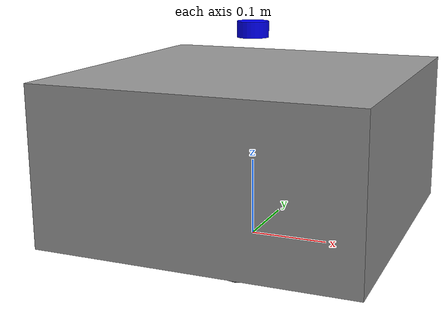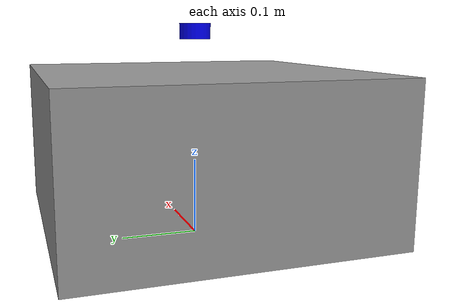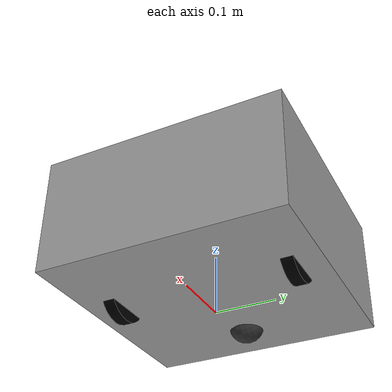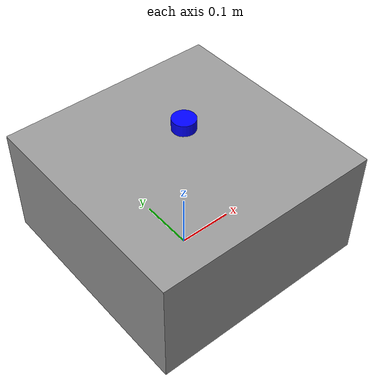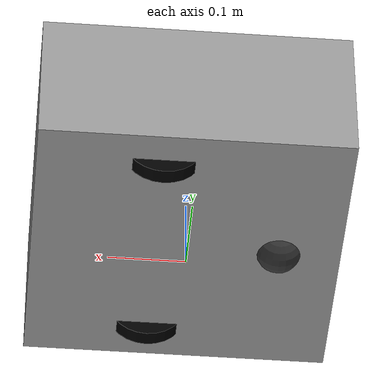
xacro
<?xml version="1.0"?>
<robot name="my_robot" xmlns:xacro="http://ros.org/wiki/xacro">

  <!-- Materials -->
  <material name="gray">
    <color rgba="0.5 0.5 0.5 1"/>
  </material>
  <material name="black">
    <color rgba="0 0 0 1"/>
  </material>
  <material name="blue">
    <color rgba="0 0 1 1"/>
  </material>

 <!--  root link (In planar environments, its more stable for navigation to declare base_footprint first rather than using base_link as the root link) -->
  <link name="base_footprint">
    <origin xyz="0 0 0" rpy="0 0 0" />
  </link>

  <!-- base_link -->
  <link name="base_link">
    <visual>
      <geometry><box size="0.4 0.4 0.2"/></geometry>
    </visual>
    <collision>
      <geometry><box size="0.4 0.4 0.2"/></geometry>
    </collision>
    <inertial>
      <origin xyz="0 0 0.12" rpy="0 0 0"/>
      <mass value="5.0"/>
      <inertia ixx="0.1" iyy="0.1" izz="0.1" ixy="0" ixz="0" iyz="0"/>
    </inertial>
  </link>

  <gazebo reference="base_link">
    <material>Gazebo/Gray</material>
  </gazebo>

  <!-- base_footprint base_link fixed tf- map -> odom -> base_footprint -> base_link -> sensor -->
  <joint name="base_footprint_joint" type="fixed">
    <origin xyz="0 0 0.12" rpy="0 0 0"/>
    <parent link="base_footprint"/>
    <child link="base_link"/>
  </joint>

  <!-- Wheel Macro -->
  <xacro:macro name="wheel" params="name y_pos">
    <link name="${name}">
      <visual>
        <origin rpy="1.5708 1.5708 0"/>
        <geometry><cylinder radius="0.05" length="0.02"/></geometry>
        <material name="black"/>
      </visual>
      <collision>
        <origin rpy="1.5708 1.5708 0"/>
        <geometry><cylinder radius="0.05" length="0.02"/></geometry>
      </collision>
      <inertial>
        <mass value="0.2"/>
        <inertia ixx="0.001" iyy="0.001" izz="0.001" ixy="0" ixz="0" iyz="0"/>
      </inertial>
    </link>

    <joint name="${name}_joint" type="continuous">
      <parent link="base_link"/>
      <child link="${name}"/>
      <origin xyz="0.04 ${y_pos} -0.07"/>
      <axis xyz="0 1 0"/>
    </joint>

    <transmission name="${name}_trans">
      <type>transmission_interface/SimpleTransmission</type>
      <joint name="${name}_joint">
        <hardwareInterface>hardware_interface/EffortJointInterface</hardwareInterface>
      </joint>
      <actuator name="${name}_motor">
        <hardwareInterface>hardware_interface/EffortJointInterface</hardwareInterface>
        <mechanicalReduction>1</mechanicalReduction>
      </actuator>
    </transmission>
  </xacro:macro>

  <gazebo reference="left_wheel">
    <material>Gazebo/Black</material>
  </gazebo>
  <gazebo reference="right_wheel">
    <material>Gazebo/Black</material>
  </gazebo>

  <!-- Back driving wheels -->
  <xacro:wheel name="left_wheel" y_pos="0.15"/>
  <xacro:wheel name="right_wheel" y_pos="-0.15"/>

  <!-- Front caster wheel -->
  <xacro:macro name="caster_wheel" params="name x_pos y_pos">
    <link name="${name}">
      <visual>
        <origin rpy="1.5708 1.5708 0"/>
        <geometry><sphere radius="0.03"/></geometry>
        <material name="black"><color rgba="0.2 0.2 0.2 1"/></material>
      </visual>
      <collision>
        <origin rpy="1.5708 1.5708 0"/>
        <geometry><sphere radius="0.03"/></geometry>
      </collision>
      <inertial>
        <mass value="0.05"/>
        <inertia ixx="0.00001" iyy="0.00001" izz="0.00001" ixy="0" ixz="0" iyz="0"/>
      </inertial>
    </link>

    <joint name="${name}_joint" type="continuous">
      <parent link="base_link"/>
      <child link="${name}"/>
      <origin xyz="${x_pos} ${y_pos} -0.09"/>
      <axis xyz="0 1 1"/>
    </joint>

    <gazebo reference="${name}">
      <kp>1000000.0</kp>
      <kd>100.0</kd>
      <mu1>0.01</mu1>
      <mu2>0.01</mu2>
      <fdir1>0 0 1</fdir1>
      <maxVel>0.1</maxVel>
      <minDepth>0.001</minDepth>
      <selfCollide>false</selfCollide>
    </gazebo>

    <gazebo reference="back_caster">
      <material>Gazebo/Black</material>
    </gazebo>
  </xacro:macro>

  <xacro:caster_wheel name="back_caster" x_pos="-0.12" y_pos="0"/>

  <!-- Lidar -->
  <link name="laser_link">
    <visual>
      <geometry><cylinder radius="0.02" length="0.02"/></geometry>
      <material name="blue"/>
    </visual>
    <collision>
      <geometry><cylinder radius="0.02" length="0.02"/></geometry>
    </collision>
    <inertial>
      <mass value="0.1"/>
      <inertia ixx="0.001" iyy="0.001" izz="0.001" ixy="0" ixz="0" iyz="0"/>
    </inertial>
  </link>

  <gazebo reference="laser_link">
    <material>Gazebo/Blue</material>
  </gazebo>

  <gazebo reference="laser_link">
    <sensor type="ray" name="laser">
      <update_rate>25.0</update_rate>
      <ray>
        <scan>
          <horizontal>
            <samples>360</samples>
            <min_angle>-1.57</min_angle>
            <max_angle>1.57</max_angle>
          </horizontal>
        </scan>
        <range><min>0.20</min><max>10.0</max></range>
      </ray>
      <plugin name="gazebo_ros_laser" filename="libgazebo_ros_laser.so">
        <topicName>scan</topicName>
        <frameName>laser_link</frameName>
      </plugin>
    </sensor>
  </gazebo>

  <joint name="laser_joint" type="fixed">
   <parent link="base_link"/>
   <child link="laser_link"/>
   <origin xyz="0 0 0.15"/>
  </joint>

  <gazebo>
    <plugin name="gazebo_ros_control" filename="libgazebo_ros_control.so">
      <robotNamespace>/my_robot</robotNamespace>
    </plugin>
  </gazebo>

  <gazebo>
    <plugin name="diff_drive_controller" filename="libgazebo_ros_diff_drive.so">
      <leftJoint>left_wheel_joint</leftJoint>
      <rightJoint>right_wheel_joint</rightJoint>
      <wheelSeparation>0.3</wheelSeparation>
      <wheelDiameter>0.1</wheelDiameter>
      <torque>5</torque>
      <commandTopic>/cmd_vel</commandTopic>
      <odometryTopic>odom</odometryTopic>
      <odometryFrame>odom</odometryFrame>
      <robotBaseFrame>base_footprint</robotBaseFrame>
      <publishTf>true</publishTf>
    </plugin>
  </gazebo>

</robot>
